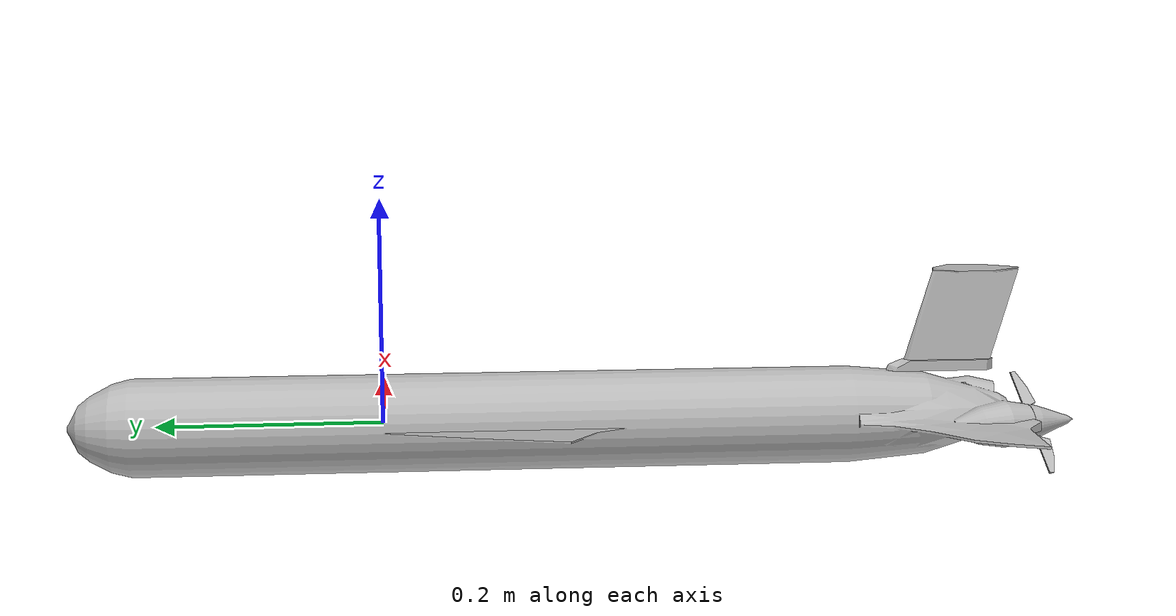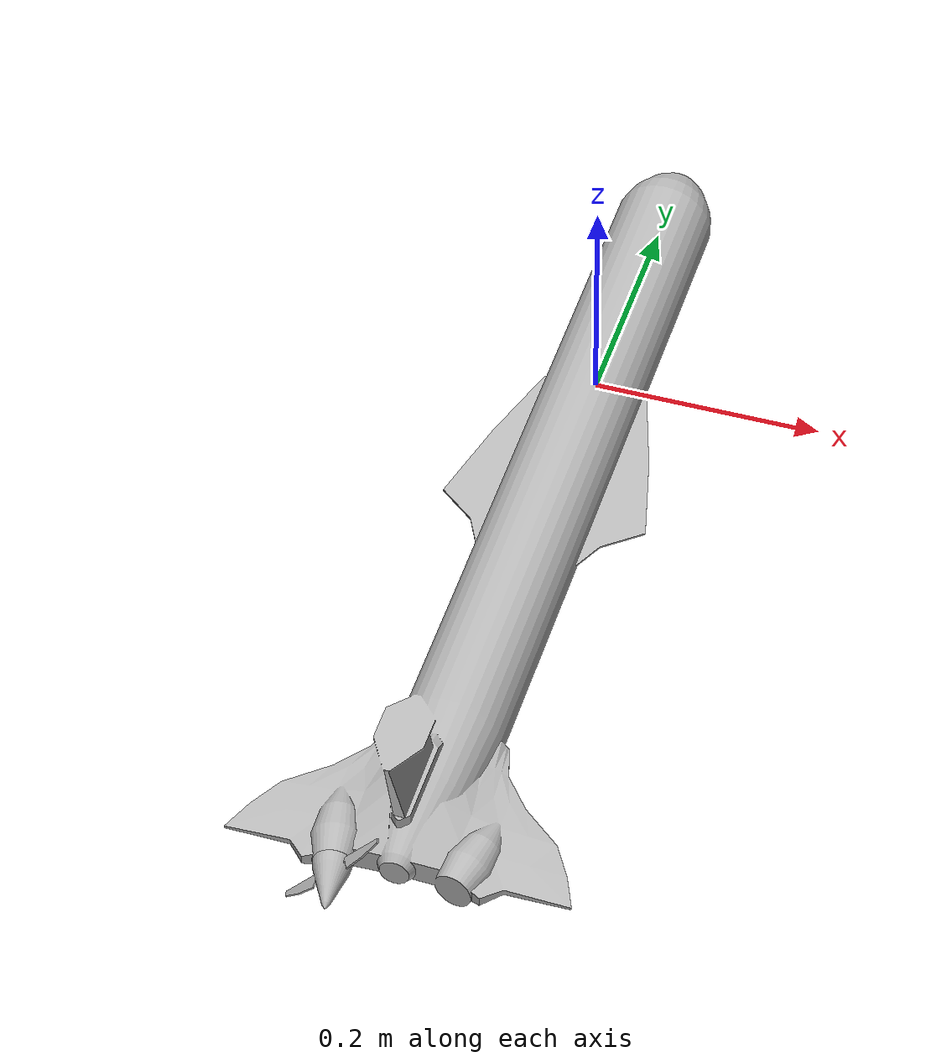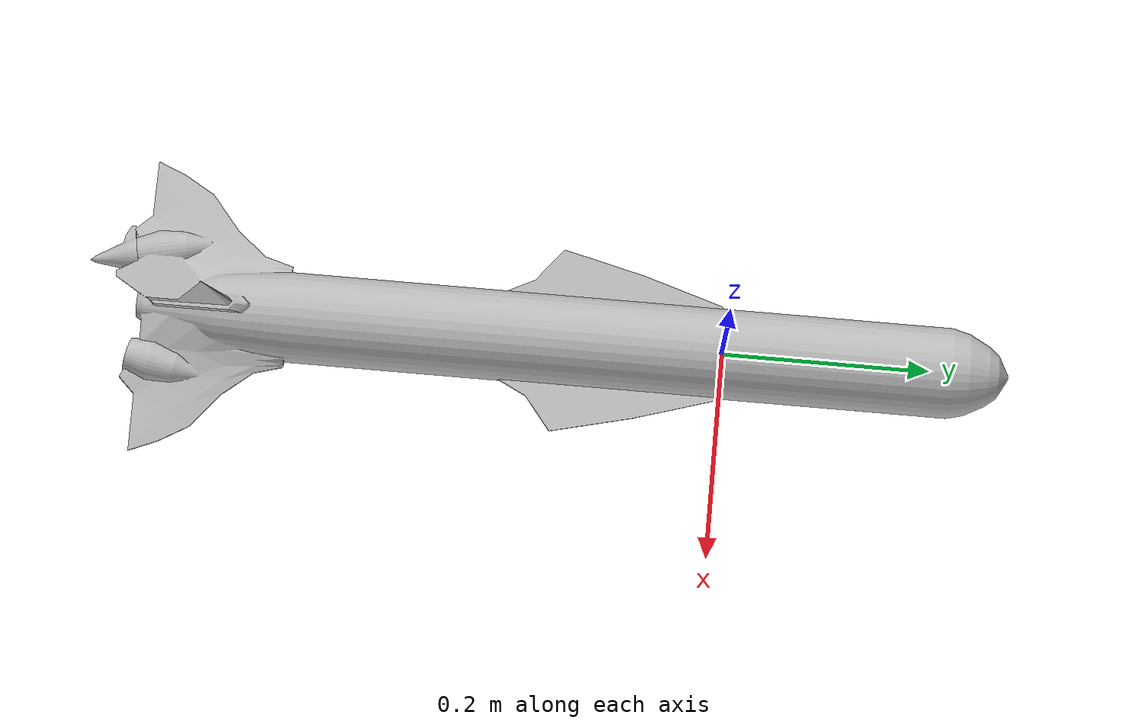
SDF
<?xml version="1.0"?>
<sdf version="1.6">
  <model name="glider_hybrid_whoi">
    <static>false</static>
    <link name="base_link">
      <visual name="visual">
        <pose>0 0 0 0 0 0</pose>
        <geometry>
          <mesh>
            <scale>1.0 1.0 1.0</scale>
            <uri>model://glider_hybrid_whoi/mesh/glider_hybrid_whoi_body.dae</uri>
          </mesh>
        </geometry>
      </visual>
      <collision name="collision">
        <pose>0 0 0 0 0 0</pose>
        <geometry>
          <mesh>
            <scale>1.0 1.0 1.0</scale>
            <uri>model://glider_hybrid_whoi/mesh/glider_hybrid_whoi_collision.dae</uri>
          </mesh>
        </geometry>
      </collision>
      <inertial>
          <pose>0 0 0 0 0 0</pose>
          <inertia>
              <ixx>10</ixx>
              <ixy>0</ixy>
              <ixz>0</ixz>
              <iyy>10</iyy>
              <iyz>0</iyz>
              <izz>10</izz>
          </inertia>
          <mass>50</mass>
      </inertial>
    </link>
    <link name="right_propeller_link">
      <visual name="visual">
        <pose>0 0 0 0 0 0</pose>
        <geometry>
          <mesh>
            <scale>1.0 1.0 1.0</scale>
            <uri>model://glider_hybrid_whoi/mesh/glider_hybrid_whoi_right_propeller.dae</uri>
          </mesh>
        </geometry>
      </visual>
      <inertial>
          <pose>0 0 0 0 0 0</pose>
          <inertia>
              <ixx>0.1</ixx>
              <ixy>0</ixy>
              <ixz>0</ixz>
              <iyy>0.1</iyy>
              <iyz>0</iyz>
              <izz>0.1</izz>
          </inertia>
          <mass>0.5</mass>
      </inertial>
    </link>
    <link name="left_propeller_link">
      <visual name="visual">
        <pose>0 0 0 0 0 0</pose>
        <geometry>
          <mesh>
            <scale>1.0 1.0 1.0</scale>
            <uri>model://glider_hybrid_whoi/mesh/glider_hybrid_whoi_left_propeller.dae</uri>
          </mesh>
        </geometry>
      </visual>
      <inertial>
          <pose>0 0 0 0 0 0</pose>
          <inertia>
              <ixx>0.1</ixx>
              <ixy>0</ixy>
              <ixz>0</ixz>
              <iyy>0.1</iyy>
              <iyz>0</iyz>
              <izz>0.1</izz>
          </inertia>
          <mass>0.5</mass>
      </inertial>
    </link>
    <joint name="right_propeller_joint" type="revolute">
        <pose>0.0535 -0.55 0 0 0 -0.20</pose>
        <child>right_propeller_link</child>
        <parent>base_link</parent>
        <axis>
            <xyz>0 1 0</xyz>
        </axis>
    </joint>
    <joint name="left_propeller_joint" type="revolute">
        <pose>-0.0535 -0.55 0 0 0 0.20</pose>
        <child>left_propeller_link</child>
        <parent>base_link</parent>
        <axis>
            <xyz>0 1 0</xyz>
        </axis>
    </joint>
  </model>
</sdf>
